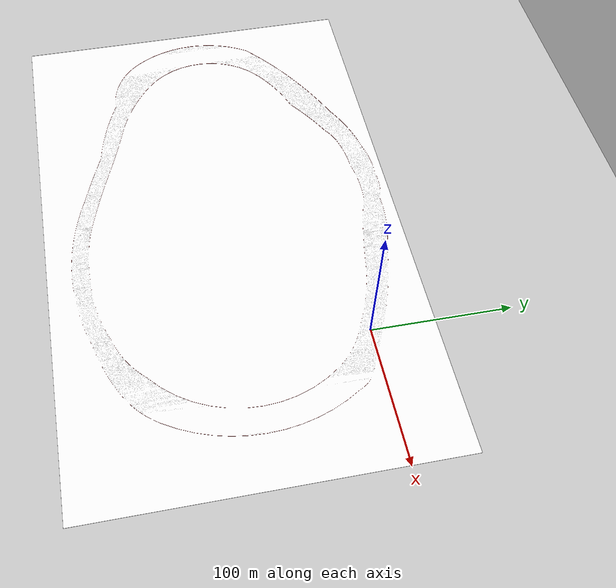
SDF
<?xml version="1.0"?>
<sdf version="1.4">
  <world name="default">
    <include>
      <uri>model://ground_plane</uri>
    </include>
    <include>
      <uri>model://sun</uri>
    </include>

    <model name="all_build">
      <pose>0 0 0  0 0 0</pose>
      <static>true</static>
      <link name="body">
        <collision name="environment_model_collision">
           <geometry>
             <mesh><uri>model://robocross_map_10sm.dae</uri></mesh>
           </geometry>
        </collision>
        <visual name="visual">
          <geometry>
            <mesh><uri>model://robocross_map_10sm.dae</uri></mesh>
          </geometry>
        </visual>
      </link>
    </model>

  </world>
</sdf>
